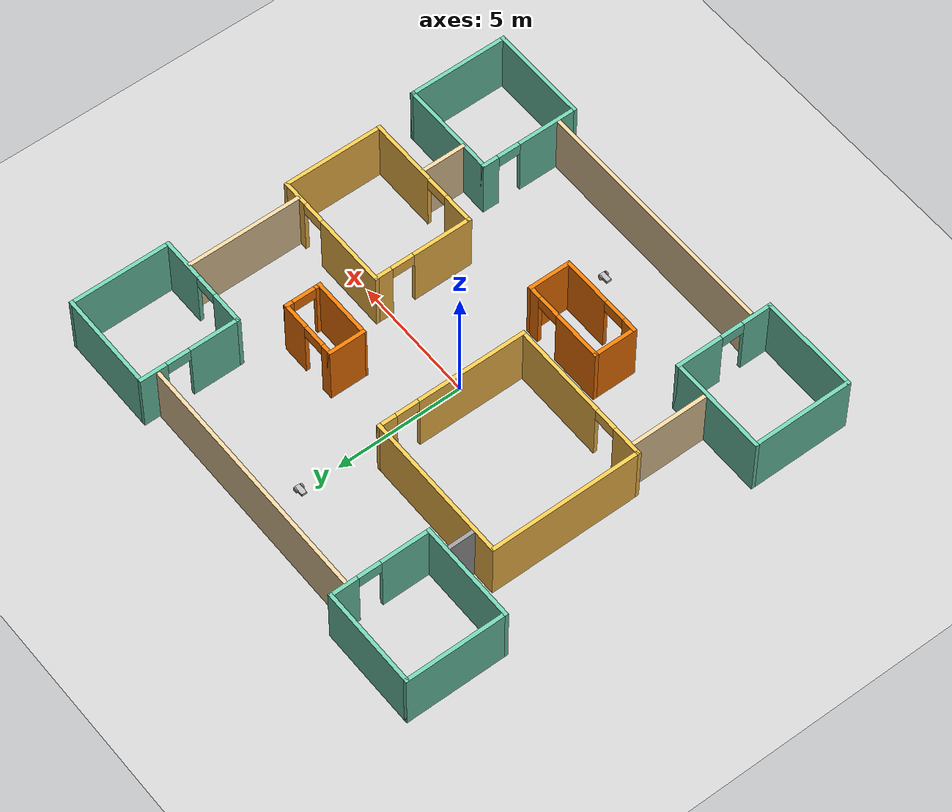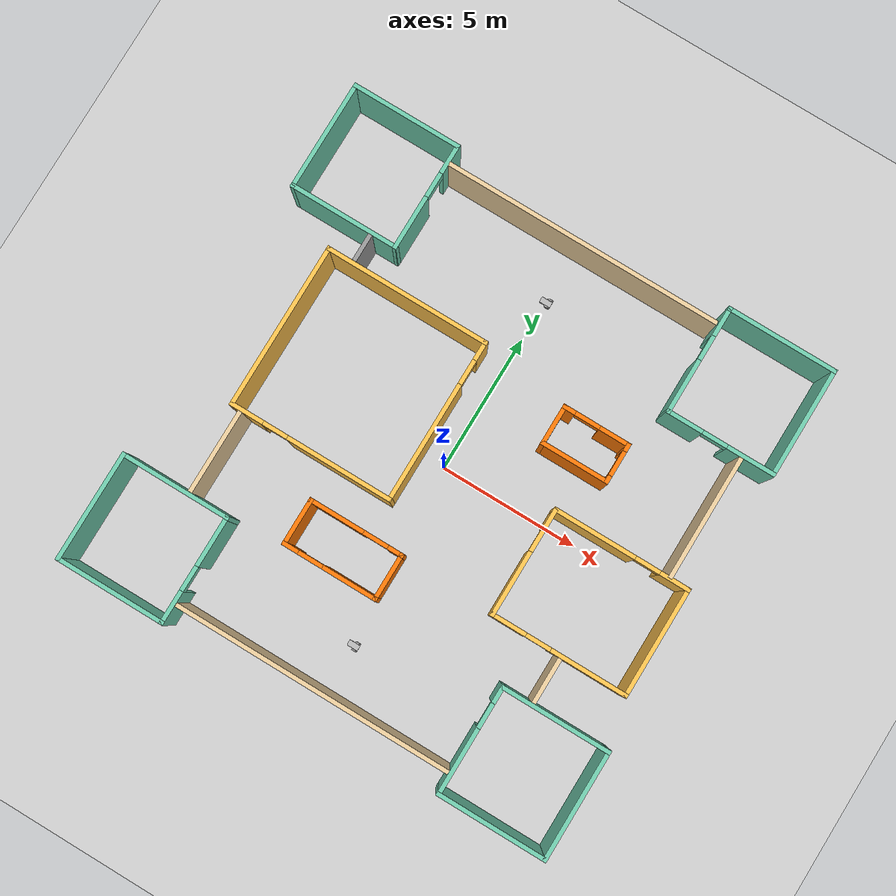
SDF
<sdf version="1.6">
 <world name="default">
  <plugin name="hello" filename="libhello.so"/>
  <light name="sun" type="directional">
   <pose>0 0 10 0 -0 0</pose>
   <diffuse>0.8 0.8 0.8 1</diffuse>
   <specular>0.2 0.2 0.2 1</specular>
   <attenuation>
    <range>1000</range>
    <constant>0.9</constant>
    <linear>0.01</linear>
    <quadratic>0.001</quadratic>
   </attenuation>
   <direction>-0.5 0.1 -0.9</direction>
  </light>
  <model name="ground_plane">
   <static>1</static>
   <link name="link">
    <collision name="collision">
     <geometry><plane><normal>0 0 1</normal><size>100 100</size></plane></geometry>
     <surface><friction><ode><mu>100</mu><mu2>50</mu2></ode></friction></surface>
    </collision>
    <visual name="visual">
     <cast_shadows>0</cast_shadows>
     <geometry><plane><normal>0 0 1</normal><size>100 100</size></plane></geometry>
     <material>
      <script><uri>file://media/materials/scripts/gazebo.material</uri><name>Gazebo/Grey</name></script>
     </material>
    </visual>
   </link>
  </model>
  <gravity>0 0 -9.8</gravity>
  <magnetic_field>6e-06 2.3e-05 -4.2e-05</magnetic_field>
  <atmosphere type="adiabatic"/>
  <physics name="default_physics" default="0" type="ode">
   <max_step_size>0.001</max_step_size>
   <real_time_factor>1</real_time_factor>
   <real_time_update_rate>1000</real_time_update_rate>
  </physics>
  <scene><ambient>0.4 0.4 0.4 1</ambient><background>0.7 0.7 0.7 1</background><shadows>1</shadows></scene>
  <spherical_coordinates>
   <surface_model>EARTH_WGS84</surface_model>
   <latitude_deg>0</latitude_deg>
   <longitude_deg>0</longitude_deg>
   <elevation>0</elevation>
   <heading_deg>0</heading_deg>
  </spherical_coordinates>
  <model name="building">
   <pose>0.17025 -0.01732 0 0 -0 0</pose>
   <link name="Wall_100">
    <collision name="Wall_100_Collision">
     <geometry><box><size>2.5 0.15 2.5</size></box></geometry>
     <pose>0 0 1.25 0 -0 0</pose>
    </collision>
    <visual name="Wall_100_Visual">
     <pose>0 0 1.25 0 -0 0</pose>
     <geometry><box><size>2.5 0.15 2.5</size></box></geometry>
     <material>
      <script><uri>file://media/materials/scripts/gazebo.material</uri><name>Gazebo/Grey</name></script>
      <ambient>0.996078 0.47451 0.0196078 1</ambient>
     </material>
     <meta><layer>0</layer></meta>
    </visual>
    <pose>3.37853 2.13615 0 0 -0 3.14159</pose>
   </link>
   <link name="Wall_101">
    <collision name="Wall_101_Collision">
     <geometry><box><size>1.5 0.15 2.5</size></box></geometry>
     <pose>0 0 1.25 0 -0 0</pose>
    </collision>
    <visual name="Wall_101_Visual">
     <pose>0 0 1.25 0 -0 0</pose>
     <geometry><box><size>1.5 0.15 2.5</size></box></geometry>
     <material>
      <script><uri>file://media/materials/scripts/gazebo.material</uri><name>Gazebo/Grey</name></script>
      <ambient>0.996078 0.47451 0.0196078 1</ambient>
     </material>
     <meta><layer>0</layer></meta>
    </visual>
    <pose>2.20353 2.81115 0 0 -0 1.5708</pose>
   </link>
   <link name="Wall_103">
    <collision name="Wall_103_Collision">
     <geometry><box><size>1.75 0.15 2.5</size></box></geometry>
     <pose>0 0 1.25 0 -0 0</pose>
    </collision>
    <visual name="Wall_103_Visual">
     <pose>0 0 1.25 0 -0 0</pose>
     <geometry><box><size>1.75 0.15 2.5</size></box></geometry>
     <material>
      <script><uri>file://media/materials/scripts/gazebo.material</uri><name>Gazebo/Grey</name></script>
      <ambient>0.996078 0.47451 0.0196078 1</ambient>
     </material>
     <meta><layer>0</layer></meta>
    </visual>
    <pose>-3.11094 -4.01873 0 0 0 -1.5708</pose>
   </link>
   <link name="Wall_104">
    <pose>-1.43594 -4.81873 0 0 -0 0</pose>
    <visual name="Wall_104_Visual_0">
     <pose>-1.45465 0 1.25 0 -0 0</pose>
     <geometry><box><size>0.590693 0.15 2.5</size></box></geometry>
     <material>
      <script><uri>file://media/materials/scripts/gazebo.material</uri><name>Gazebo/Grey</name></script>
      <ambient>0.996078 0.47451 0.0196078 1</ambient>
     </material>
     <meta><layer>0</layer></meta>
    </visual>
    <collision name="Wall_104_Collision_0">
     <geometry><box><size>0.590693 0.15 2.5</size></box></geometry>
     <pose>-1.45465 0 1.25 0 -0 0</pose>
    </collision>
    <visual name="Wall_104_Visual_1">
     <pose>0.745346 0 1.25 0 -0 0</pose>
     <geometry><box><size>2.00931 0.15 2.5</size></box></geometry>
     <material>
      <script><uri>file://media/materials/scripts/gazebo.material</uri><name>Gazebo/Grey</name></script>
      <ambient>0.996078 0.47451 0.0196078 1</ambient>
     </material>
     <meta><layer>0</layer></meta>
    </visual>
    <collision name="Wall_104_Collision_1">
     <geometry><box><size>2.00931 0.15 2.5</size></box></geometry>
     <pose>0.745346 0 1.25 0 -0 0</pose>
    </collision>
    <visual name="Wall_104_Visual_2">
     <pose>-0.709307 0 2.25 0 -0 0</pose>
     <geometry><box><size>0.9 0.15 0.5</size></box></geometry>
     <material>
      <script><uri>file://media/materials/scripts/gazebo.material</uri><name>Gazebo/Grey</name></script>
      <ambient>0.996078 0.47451 0.0196078 1</ambient>
     </material>
     <meta><layer>0</layer></meta>
    </visual>
    <collision name="Wall_104_Collision_2">
     <geometry><box><size>0.9 0.15 0.5</size></box></geometry>
     <pose>-0.709307 0 2.25 0 -0 0</pose>
    </collision>
   </link>
   <link name="Wall_105">
    <collision name="Wall_105_Collision">
     <geometry><box><size>1.75 0.15 2.5</size></box></geometry>
     <pose>0 0 1.25 0 -0 0</pose>
    </collision>
    <visual name="Wall_105_Visual">
     <pose>0 0 1.25 0 -0 0</pose>
     <geometry><box><size>1.75 0.15 2.5</size></box></geometry>
     <material>
      <script><uri>file://media/materials/scripts/gazebo.material</uri><name>Gazebo/Grey</name></script>
      <ambient>0.996078 0.47451 0.0196078 1</ambient>
     </material>
     <meta><layer>0</layer></meta>
    </visual>
    <pose>0.239057 -4.01873 0 0 -0 1.5708</pose>
   </link>
   <link name="Wall_106">
    <pose>-1.43594 -3.21873 0 0 -0 3.14159</pose>
    <visual name="Wall_106_Visual_0">
     <pose>-1.46139 0 1.25 0 -0 0</pose>
     <geometry><box><size>0.577222 0.15 2.5</size></box></geometry>
     <material>
      <script><uri>file://media/materials/scripts/gazebo.material</uri><name>Gazebo/Grey</name></script>
      <ambient>0.996078 0.47451 0.0196078 1</ambient>
     </material>
     <meta><layer>0</layer></meta>
    </visual>
    <collision name="Wall_106_Collision_0">
     <geometry><box><size>0.577222 0.15 2.5</size></box></geometry>
     <pose>-1.46139 0 1.25 0 -0 0</pose>
    </collision>
    <visual name="Wall_106_Visual_1">
     <pose>0.738611 0 1.25 0 -0 0</pose>
     <geometry><box><size>2.02278 0.15 2.5</size></box></geometry>
     <material>
      <script><uri>file://media/materials/scripts/gazebo.material</uri><name>Gazebo/Grey</name></script>
      <ambient>0.996078 0.47451 0.0196078 1</ambient>
     </material>
     <meta><layer>0</layer></meta>
    </visual>
    <collision name="Wall_106_Collision_1">
     <geometry><box><size>2.02278 0.15 2.5</size></box></geometry>
     <pose>0.738611 0 1.25 0 -0 0</pose>
    </collision>
    <visual name="Wall_106_Visual_2">
     <pose>-0.722778 0 2.25 0 -0 0</pose>
     <geometry><box><size>0.9 0.15 0.5</size></box></geometry>
     <material>
      <script><uri>file://media/materials/scripts/gazebo.material</uri><name>Gazebo/Grey</name></script>
      <ambient>0.996078 0.47451 0.0196078 1</ambient>
     </material>
     <meta><layer>0</layer></meta>
    </visual>
    <collision name="Wall_106_Collision_2">
     <geometry><box><size>0.9 0.15 0.5</size></box></geometry>
     <pose>-0.722778 0 2.25 0 -0 0</pose>
    </collision>
   </link>
   <link name="Wall_108">
    <collision name="Wall_108_Collision">
     <geometry><box><size>3 0.15 2.5</size></box></geometry>
     <pose>0 0 1.25 0 -0 0</pose>
    </collision>
    <visual name="Wall_108_Visual">
     <pose>0 0 1.25 0 -0 0</pose>
     <geometry><box><size>3 0.15 2.5</size></box></geometry>
     <material>
      <script><uri>file://media/materials/scripts/gazebo.material</uri><name>Gazebo/Grey</name></script>
      <ambient>0.921569 0.807843 0.615686 1</ambient>
     </material>
     <meta><layer>0</layer></meta>
    </visual>
    <pose>-6.50973 -3.48506 0 0 0 -1.5708</pose>
   </link>
   <link name="Wall_114">
    <collision name="Wall_114_Collision">
     <geometry><box><size>4.5 0.15 2.5</size></box></geometry>
     <pose>0 0 1.25 0 -0 0</pose>
    </collision>
    <visual name="Wall_114_Visual">
     <pose>0 0 1.25 0 -0 0</pose>
     <geometry><box><size>4.5 0.15 2.5</size></box></geometry>
     <material>
      <script><uri>file://media/materials/scripts/gazebo.material</uri><name>Gazebo/Grey</name></script>
      <ambient>0.921569 0.807843 0.615686 1</ambient>
     </material>
     <meta><layer>0</layer></meta>
    </visual>
    <pose>7.81153 2.79707 0 0 0 -1.5708</pose>
   </link>
   <link name="Wall_116">
    <collision name="Wall_116_Collision">
     <geometry><box><size>10 0.15 2.5</size></box></geometry>
     <pose>0 0 1.25 0 -0 0</pose>
    </collision>
    <visual name="Wall_116_Visual">
     <pose>0 0 1.25 0 -0 0</pose>
     <geometry><box><size>10 0.15 2.5</size></box></geometry>
     <material>
      <script><uri>file://media/materials/scripts/gazebo.material</uri><name>Gazebo/Grey</name></script>
      <ambient>0.921569 0.807843 0.615686 1</ambient>
     </material>
     <meta><layer>0</layer></meta>
    </visual>
    <pose>0.006519 -8.20878 0 0 -0 0</pose>
   </link>
   <link name="Wall_118">
    <collision name="Wall_118_Collision">
     <geometry><box><size>1.75 0.15 2.5</size></box></geometry>
     <pose>0 0 1.25 0 -0 0</pose>
    </collision>
    <visual name="Wall_118_Visual">
     <pose>0 0 1.25 0 -0 0</pose>
     <geometry><box><size>1.75 0.15 2.5</size></box></geometry>
     <material>
      <script><uri>file://media/materials/scripts/gazebo.material</uri><name>Gazebo/Grey</name></script>
      <ambient>0.921569 0.807843 0.615686 1</ambient>
     </material>
     <meta><layer>0</layer></meta>
    </visual>
    <pose>6.15848 -4.23502 0 0 0 -1.5708</pose>
   </link>
   <link name="Wall_121">
    <collision name="Wall_121_Collision">
     <geometry><box><size>1 0.15 2.5</size></box></geometry>
     <pose>0 0 1.25 0 -0 0</pose>
    </collision>
    <visual name="Wall_121_Visual">
     <pose>0 0 1.25 0 -0 0</pose>
     <geometry><box><size>1 0.15 2.5</size></box></geometry>
     <material>
      <script><uri>file://media/materials/scripts/gazebo.material</uri><name>Gazebo/Grey</name></script>
      <ambient>1 1 1 1</ambient>
     </material>
     <meta><layer>0</layer></meta>
    </visual>
    <pose>-5.96902 4.51336 0 0 0 -1.5708</pose>
   </link>
   <link name="Wall_124">
    <collision name="Wall_124_Collision">
     <geometry><box><size>10 0.15 2.5</size></box></geometry>
     <pose>0 0 1.25 0 -0 0</pose>
    </collision>
    <visual name="Wall_124_Visual">
     <pose>0 0 1.25 0 -0 0</pose>
     <geometry><box><size>10 0.15 2.5</size></box></geometry>
     <material>
      <script><uri>file://media/materials/scripts/gazebo.material</uri><name>Gazebo/Grey</name></script>
      <ambient>0.921569 0.807843 0.615686 1</ambient>
     </material>
     <meta><layer>0</layer></meta>
    </visual>
    <pose>-0.024379 8.30625 0 0 -0 0</pose>
   </link>
   <link name="Wall_58">
    <collision name="Wall_58_Collision">
     <geometry><box><size>4 0.15 2.5</size></box></geometry>
     <pose>0 0 1.25 0 -0 0</pose>
    </collision>
    <visual name="Wall_58_Visual">
     <pose>0 0 1.25 0 -0 0</pose>
     <geometry><box><size>4 0.15 2.5</size></box></geometry>
     <material>
      <script><uri>file://media/materials/scripts/gazebo.material</uri><name>Gazebo/Grey</name></script>
      <ambient>0.435294 0.796078 0.67451 1</ambient>
     </material>
     <meta><layer>0</layer></meta>
    </visual>
    <pose>-7.00929 8.93364 0 0 -0 0</pose>
   </link>
   <link name="Wall_59">
    <pose>-5.08429 7.00864 0 0 0 -1.5708</pose>
    <visual name="Wall_59_Visual_0">
     <pose>-1.4441 0 1.25 0 -0 0</pose>
     <geometry><box><size>1.11179 0.15 2.5</size></box></geometry>
     <material>
      <script><uri>file://media/materials/scripts/gazebo.material</uri><name>Gazebo/Grey</name></script>
      <ambient>0.435294 0.796078 0.67451 1</ambient>
     </material>
     <meta><layer>0</layer></meta>
    </visual>
    <collision name="Wall_59_Collision_0">
     <geometry><box><size>1.11179 0.15 2.5</size></box></geometry>
     <pose>-1.4441 0 1.25 0 -0 0</pose>
    </collision>
    <visual name="Wall_59_Visual_1">
     <pose>1.0059 0 1.25 0 -0 0</pose>
     <geometry><box><size>1.98821 0.15 2.5</size></box></geometry>
     <material>
      <script><uri>file://media/materials/scripts/gazebo.material</uri><name>Gazebo/Grey</name></script>
      <ambient>0.435294 0.796078 0.67451 1</ambient>
     </material>
     <meta><layer>0</layer></meta>
    </visual>
    <collision name="Wall_59_Collision_1">
     <geometry><box><size>1.98821 0.15 2.5</size></box></geometry>
     <pose>1.0059 0 1.25 0 -0 0</pose>
    </collision>
    <visual name="Wall_59_Visual_2">
     <pose>-0.438207 0 2.25 0 -0 0</pose>
     <geometry><box><size>0.9 0.15 0.5</size></box></geometry>
     <material>
      <script><uri>file://media/materials/scripts/gazebo.material</uri><name>Gazebo/Grey</name></script>
      <ambient>0.435294 0.796078 0.67451 1</ambient>
     </material>
     <meta><layer>0</layer></meta>
    </visual>
    <collision name="Wall_59_Collision_2">
     <geometry><box><size>0.9 0.15 0.5</size></box></geometry>
     <pose>-0.438207 0 2.25 0 -0 0</pose>
    </collision>
   </link>
   <link name="Wall_60">
    <collision name="Wall_60_Collision">
     <geometry><box><size>4 0.15 2.5</size></box></geometry>
     <pose>0 0 1.25 0 -0 0</pose>
    </collision>
    <visual name="Wall_60_Visual">
     <pose>0 0 1.25 0 -0 0</pose>
     <geometry><box><size>4 0.15 2.5</size></box></geometry>
     <material>
      <script><uri>file://media/materials/scripts/gazebo.material</uri><name>Gazebo/Grey</name></script>
      <ambient>0.435294 0.796078 0.67451 1</ambient>
     </material>
     <meta><layer>0</layer></meta>
    </visual>
    <pose>-7.00929 5.08364 0 0 -0 3.14159</pose>
   </link>
   <link name="Wall_61">
    <collision name="Wall_61_Collision">
     <geometry><box><size>4 0.15 2.5</size></box></geometry>
     <pose>0 0 1.25 0 -0 0</pose>
    </collision>
    <visual name="Wall_61_Visual">
     <pose>0 0 1.25 0 -0 0</pose>
     <geometry><box><size>4 0.15 2.5</size></box></geometry>
     <material>
      <script><uri>file://media/materials/scripts/gazebo.material</uri><name>Gazebo/Grey</name></script>
      <ambient>0.435294 0.796078 0.67451 1</ambient>
     </material>
     <meta><layer>0</layer></meta>
    </visual>
    <pose>-8.93429 7.00864 0 0 -0 1.5708</pose>
   </link>
   <link name="Wall_63">
    <collision name="Wall_63_Collision">
     <geometry><box><size>4 0.15 2.5</size></box></geometry>
     <pose>0 0 1.25 0 -0 0</pose>
    </collision>
    <visual name="Wall_63_Visual">
     <pose>0 0 1.25 0 -0 0</pose>
     <geometry><box><size>4 0.15 2.5</size></box></geometry>
     <material>
      <script><uri>file://media/materials/scripts/gazebo.material</uri><name>Gazebo/Grey</name></script>
      <ambient>0.435294 0.796078 0.67451 1</ambient>
     </material>
     <meta><layer>0</layer></meta>
    </visual>
    <pose>8.93429 6.99136 0 0 0 -1.5708</pose>
   </link>
   <link name="Wall_64">
    <pose>7.00929 5.06635 0 0 -0 3.14159</pose>
    <visual name="Wall_64_Visual_0">
     <pose>-1.11962 0 1.25 0 -0 0</pose>
     <geometry><box><size>1.76077 0.15 2.5</size></box></geometry>
     <material>
      <script><uri>file://media/materials/scripts/gazebo.material</uri><name>Gazebo/Grey</name></script>
      <ambient>0.435294 0.796078 0.67451 1</ambient>
     </material>
     <meta><layer>0</layer></meta>
    </visual>
    <collision name="Wall_64_Collision_0">
     <geometry><box><size>1.76077 0.15 2.5</size></box></geometry>
     <pose>-1.11962 0 1.25 0 -0 0</pose>
    </collision>
    <visual name="Wall_64_Visual_1">
     <pose>1.33038 0 1.25 0 -0 0</pose>
     <geometry><box><size>1.33923 0.15 2.5</size></box></geometry>
     <material>
      <script><uri>file://media/materials/scripts/gazebo.material</uri><name>Gazebo/Grey</name></script>
      <ambient>0.435294 0.796078 0.67451 1</ambient>
     </material>
     <meta><layer>0</layer></meta>
    </visual>
    <collision name="Wall_64_Collision_1">
     <geometry><box><size>1.33923 0.15 2.5</size></box></geometry>
     <pose>1.33038 0 1.25 0 -0 0</pose>
    </collision>
    <visual name="Wall_64_Visual_2">
     <pose>0.210767 0 2.25 0 -0 0</pose>
     <geometry><box><size>0.9 0.15 0.5</size></box></geometry>
     <material>
      <script><uri>file://media/materials/scripts/gazebo.material</uri><name>Gazebo/Grey</name></script>
      <ambient>0.435294 0.796078 0.67451 1</ambient>
     </material>
     <meta><layer>0</layer></meta>
    </visual>
    <collision name="Wall_64_Collision_2">
     <geometry><box><size>0.9 0.15 0.5</size></box></geometry>
     <pose>0.210767 0 2.25 0 -0 0</pose>
    </collision>
   </link>
   <link name="Wall_65">
    <pose>5.08429 6.99136 0 0 -0 1.5708</pose>
    <visual name="Wall_65_Visual_0">
     <pose>-0.997252 0 1.25 0 -0 0</pose>
     <geometry><box><size>2.0055 0.15 2.5</size></box></geometry>
     <material>
      <script><uri>file://media/materials/scripts/gazebo.material</uri><name>Gazebo/Grey</name></script>
      <ambient>0.435294 0.796078 0.67451 1</ambient>
     </material>
     <meta><layer>0</layer></meta>
    </visual>
    <collision name="Wall_65_Collision_0">
     <geometry><box><size>2.0055 0.15 2.5</size></box></geometry>
     <pose>-0.997252 0 1.25 0 -0 0</pose>
    </collision>
    <visual name="Wall_65_Visual_1">
     <pose>1.45275 0 1.25 0 -0 0</pose>
     <geometry><box><size>1.0945 0.15 2.5</size></box></geometry>
     <material>
      <script><uri>file://media/materials/scripts/gazebo.material</uri><name>Gazebo/Grey</name></script>
      <ambient>0.435294 0.796078 0.67451 1</ambient>
     </material>
     <meta><layer>0</layer></meta>
    </visual>
    <collision name="Wall_65_Collision_1">
     <geometry><box><size>1.0945 0.15 2.5</size></box></geometry>
     <pose>1.45275 0 1.25 0 -0 0</pose>
    </collision>
    <visual name="Wall_65_Visual_2">
     <pose>0.455496 0 2.25 0 -0 0</pose>
     <geometry><box><size>0.9 0.15 0.5</size></box></geometry>
     <material>
      <script><uri>file://media/materials/scripts/gazebo.material</uri><name>Gazebo/Grey</name></script>
      <ambient>0.435294 0.796078 0.67451 1</ambient>
     </material>
     <meta><layer>0</layer></meta>
    </visual>
    <collision name="Wall_65_Collision_2">
     <geometry><box><size>0.9 0.15 0.5</size></box></geometry>
     <pose>0.455496 0 2.25 0 -0 0</pose>
    </collision>
   </link>
   <link name="Wall_66">
    <collision name="Wall_66_Collision">
     <geometry><box><size>4 0.15 2.5</size></box></geometry>
     <pose>0 0 1.25 0 -0 0</pose>
    </collision>
    <visual name="Wall_66_Visual">
     <pose>0 0 1.25 0 -0 0</pose>
     <geometry><box><size>4 0.15 2.5</size></box></geometry>
     <material>
      <script><uri>file://media/materials/scripts/gazebo.material</uri><name>Gazebo/Grey</name></script>
      <ambient>0.435294 0.796078 0.67451 1</ambient>
     </material>
     <meta><layer>0</layer></meta>
    </visual>
    <pose>7.00929 8.91635 0 0 -0 0</pose>
   </link>
   <link name="Wall_71">
    <collision name="Wall_71_Collision">
     <geometry><box><size>4 0.15 2.5</size></box></geometry>
     <pose>0 0 1.25 0 -0 0</pose>
    </collision>
    <visual name="Wall_71_Visual">
     <pose>0 0 1.25 0 -0 0</pose>
     <geometry><box><size>4 0.15 2.5</size></box></geometry>
     <material>
      <script><uri>file://media/materials/scripts/gazebo.material</uri><name>Gazebo/Grey</name></script>
      <ambient>0.435294 0.796078 0.67451 1</ambient>
     </material>
     <meta><layer>0</layer></meta>
    </visual>
    <pose>7.00929 -8.93364 0 0 -0 3.14159</pose>
   </link>
   <link name="Wall_72">
    <pose>5.08429 -7.00864 0 0 -0 1.5708</pose>
    <visual name="Wall_72_Visual_0">
     <pose>-0.779391 0 1.25 0 -0 0</pose>
     <geometry><box><size>2.44122 0.15 2.5</size></box></geometry>
     <material>
      <script><uri>file://media/materials/scripts/gazebo.material</uri><name>Gazebo/Grey</name></script>
      <ambient>0.435294 0.796078 0.67451 1</ambient>
     </material>
     <meta><layer>0</layer></meta>
    </visual>
    <collision name="Wall_72_Collision_0">
     <geometry><box><size>2.44122 0.15 2.5</size></box></geometry>
     <pose>-0.779391 0 1.25 0 -0 0</pose>
    </collision>
    <visual name="Wall_72_Visual_1">
     <pose>1.67061 0 1.25 0 -0 0</pose>
     <geometry><box><size>0.658782 0.15 2.5</size></box></geometry>
     <material>
      <script><uri>file://media/materials/scripts/gazebo.material</uri><name>Gazebo/Grey</name></script>
      <ambient>0.435294 0.796078 0.67451 1</ambient>
     </material>
     <meta><layer>0</layer></meta>
    </visual>
    <collision name="Wall_72_Collision_1">
     <geometry><box><size>0.658782 0.15 2.5</size></box></geometry>
     <pose>1.67061 0 1.25 0 -0 0</pose>
    </collision>
    <visual name="Wall_72_Visual_2">
     <pose>0.891218 0 2.25 0 -0 0</pose>
     <geometry><box><size>0.9 0.15 0.5</size></box></geometry>
     <material>
      <script><uri>file://media/materials/scripts/gazebo.material</uri><name>Gazebo/Grey</name></script>
      <ambient>0.435294 0.796078 0.67451 1</ambient>
     </material>
     <meta><layer>0</layer></meta>
    </visual>
    <collision name="Wall_72_Collision_2">
     <geometry><box><size>0.9 0.15 0.5</size></box></geometry>
     <pose>0.891218 0 2.25 0 -0 0</pose>
    </collision>
   </link>
   <link name="Wall_73">
    <collision name="Wall_73_Collision">
     <geometry><box><size>4 0.15 2.5</size></box></geometry>
     <pose>0 0 1.25 0 -0 0</pose>
    </collision>
    <visual name="Wall_73_Visual">
     <pose>0 0 1.25 0 -0 0</pose>
     <geometry><box><size>4 0.15 2.5</size></box></geometry>
     <material>
      <script><uri>file://media/materials/scripts/gazebo.material</uri><name>Gazebo/Grey</name></script>
      <ambient>0.435294 0.796078 0.67451 1</ambient>
     </material>
     <meta><layer>0</layer></meta>
    </visual>
    <pose>7.00929 -5.08364 0 0 -0 0</pose>
   </link>
   <link name="Wall_74">
    <collision name="Wall_74_Collision">
     <geometry><box><size>4 0.15 2.5</size></box></geometry>
     <pose>0 0 1.25 0 -0 0</pose>
    </collision>
    <visual name="Wall_74_Visual">
     <pose>0 0 1.25 0 -0 0</pose>
     <geometry><box><size>4 0.15 2.5</size></box></geometry>
     <material>
      <script><uri>file://media/materials/scripts/gazebo.material</uri><name>Gazebo/Grey</name></script>
      <ambient>0.435294 0.796078 0.67451 1</ambient>
     </material>
     <meta><layer>0</layer></meta>
    </visual>
    <pose>8.93429 -7.00864 0 0 0 -1.5708</pose>
   </link>
   <link name="Wall_76">
    <collision name="Wall_76_Collision">
     <geometry><box><size>4 0.15 2.5</size></box></geometry>
     <pose>0 0 1.25 0 -0 0</pose>
    </collision>
    <visual name="Wall_76_Visual">
     <pose>0 0 1.25 0 -0 0</pose>
     <geometry><box><size>4 0.15 2.5</size></box></geometry>
     <material>
      <script><uri>file://media/materials/scripts/gazebo.material</uri><name>Gazebo/Grey</name></script>
      <ambient>0.435294 0.796078 0.67451 1</ambient>
     </material>
     <meta><layer>0</layer></meta>
    </visual>
    <pose>-7.00929 -8.91636 0 0 -0 0</pose>
   </link>
   <link name="Wall_77">
    <pose>-5.08429 -6.99136 0 0 -0 1.5708</pose>
    <visual name="Wall_77_Visual_0">
     <pose>-1.38249 0 1.25 0 -0 0</pose>
     <geometry><box><size>1.23503 0.15 2.5</size></box></geometry>
     <material>
      <script><uri>file://media/materials/scripts/gazebo.material</uri><name>Gazebo/Grey</name></script>
      <ambient>0.435294 0.796078 0.67451 1</ambient>
     </material>
     <meta><layer>0</layer></meta>
    </visual>
    <collision name="Wall_77_Collision_0">
     <geometry><box><size>1.23503 0.15 2.5</size></box></geometry>
     <pose>-1.38249 0 1.25 0 -0 0</pose>
    </collision>
    <visual name="Wall_77_Visual_1">
     <pose>1.06751 0 1.25 0 -0 0</pose>
     <geometry><box><size>1.86497 0.15 2.5</size></box></geometry>
     <material>
      <script><uri>file://media/materials/scripts/gazebo.material</uri><name>Gazebo/Grey</name></script>
      <ambient>0.435294 0.796078 0.67451 1</ambient>
     </material>
     <meta><layer>0</layer></meta>
    </visual>
    <collision name="Wall_77_Collision_1">
     <geometry><box><size>1.86497 0.15 2.5</size></box></geometry>
     <pose>1.06751 0 1.25 0 -0 0</pose>
    </collision>
    <visual name="Wall_77_Visual_2">
     <pose>-0.314972 0 2.25 0 -0 0</pose>
     <geometry><box><size>0.9 0.15 0.5</size></box></geometry>
     <material>
      <script><uri>file://media/materials/scripts/gazebo.material</uri><name>Gazebo/Grey</name></script>
      <ambient>0.435294 0.796078 0.67451 1</ambient>
     </material>
     <meta><layer>0</layer></meta>
    </visual>
    <collision name="Wall_77_Collision_2">
     <geometry><box><size>0.9 0.15 0.5</size></box></geometry>
     <pose>-0.314972 0 2.25 0 -0 0</pose>
    </collision>
   </link>
   <link name="Wall_78">
    <collision name="Wall_78_Collision">
     <geometry><box><size>4 0.15 2.5</size></box></geometry>
     <pose>0 0 1.25 0 -0 0</pose>
    </collision>
    <visual name="Wall_78_Visual">
     <pose>0 0 1.25 0 -0 0</pose>
     <geometry><box><size>4 0.15 2.5</size></box></geometry>
     <material>
      <script><uri>file://media/materials/scripts/gazebo.material</uri><name>Gazebo/Grey</name></script>
      <ambient>0.435294 0.796078 0.67451 1</ambient>
     </material>
     <meta><layer>0</layer></meta>
    </visual>
    <pose>-7.00929 -5.06636 0 0 -0 3.14159</pose>
   </link>
   <link name="Wall_79">
    <collision name="Wall_79_Collision">
     <geometry><box><size>4 0.15 2.5</size></box></geometry>
     <pose>0 0 1.25 0 -0 0</pose>
    </collision>
    <visual name="Wall_79_Visual">
     <pose>0 0 1.25 0 -0 0</pose>
     <geometry><box><size>4 0.15 2.5</size></box></geometry>
     <material>
      <script><uri>file://media/materials/scripts/gazebo.material</uri><name>Gazebo/Grey</name></script>
      <ambient>0.435294 0.796078 0.67451 1</ambient>
     </material>
     <meta><layer>0</layer></meta>
    </visual>
    <pose>-8.93429 -6.99136 0 0 0 -1.5708</pose>
   </link>
   <link name="Wall_84">
    <collision name="Wall_84_Collision">
     <geometry><box><size>6 0.15 2.5</size></box></geometry>
     <pose>0 0 1.25 0 -0 0</pose>
    </collision>
    <visual name="Wall_84_Visual">
     <pose>0 0 1.25 0 -0 0</pose>
     <geometry><box><size>6 0.15 2.5</size></box></geometry>
     <material>
      <script><uri>file://media/materials/scripts/gazebo.material</uri><name>Gazebo/Grey</name></script>
      <ambient>1 0.764706 0.305882 1</ambient>
     </material>
     <meta><layer>0</layer></meta>
    </visual>
    <pose>-3.94006 3.93417 0 0 -0 0</pose>
   </link>
   <link name="Wall_85">
    <pose>-1.01506 1.00917 0 0 0 -1.5708</pose>
    <visual name="Wall_85_Visual_0">
     <pose>-2.63359 0 1.25 0 -0 0</pose>
     <geometry><box><size>0.732823 0.15 2.5</size></box></geometry>
     <material>
      <script><uri>file://media/materials/scripts/gazebo.material</uri><name>Gazebo/Grey</name></script>
      <ambient>1 0.764706 0.305882 1</ambient>
     </material>
     <meta><layer>0</layer></meta>
    </visual>
    <collision name="Wall_85_Collision_0">
     <geometry><box><size>0.732823 0.15 2.5</size></box></geometry>
     <pose>-2.63359 0 1.25 0 -0 0</pose>
    </collision>
    <visual name="Wall_85_Visual_1">
     <pose>0.816412 0 1.25 0 -0 0</pose>
     <geometry><box><size>4.36718 0.15 2.5</size></box></geometry>
     <material>
      <script><uri>file://media/materials/scripts/gazebo.material</uri><name>Gazebo/Grey</name></script>
      <ambient>1 0.764706 0.305882 1</ambient>
     </material>
     <meta><layer>0</layer></meta>
    </visual>
    <collision name="Wall_85_Collision_1">
     <geometry><box><size>4.36718 0.15 2.5</size></box></geometry>
     <pose>0.816412 0 1.25 0 -0 0</pose>
    </collision>
    <visual name="Wall_85_Visual_2">
     <pose>-1.81718 0 2.25 0 -0 0</pose>
     <geometry><box><size>0.9 0.15 0.5</size></box></geometry>
     <material>
      <script><uri>file://media/materials/scripts/gazebo.material</uri><name>Gazebo/Grey</name></script>
      <ambient>1 0.764706 0.305882 1</ambient>
     </material>
     <meta><layer>0</layer></meta>
    </visual>
    <collision name="Wall_85_Collision_2">
     <geometry><box><size>0.9 0.15 0.5</size></box></geometry>
     <pose>-1.81718 0 2.25 0 -0 0</pose>
    </collision>
   </link>
   <link name="Wall_86">
    <pose>-3.94006 -1.91583 0 0 -0 3.14159</pose>
    <visual name="Wall_86_Visual_0">
     <pose>-1.06873 0 1.25 0 -0 0</pose>
     <geometry><box><size>3.86254 0.15 2.5</size></box></geometry>
     <material>
      <script><uri>file://media/materials/scripts/gazebo.material</uri><name>Gazebo/Grey</name></script>
      <ambient>1 0.764706 0.305882 1</ambient>
     </material>
     <meta><layer>0</layer></meta>
    </visual>
    <collision name="Wall_86_Collision_0">
     <geometry><box><size>3.86254 0.15 2.5</size></box></geometry>
     <pose>-1.06873 0 1.25 0 -0 0</pose>
    </collision>
    <visual name="Wall_86_Visual_1">
     <pose>2.38127 0 1.25 0 -0 0</pose>
     <geometry><box><size>1.23746 0.15 2.5</size></box></geometry>
     <material>
      <script><uri>file://media/materials/scripts/gazebo.material</uri><name>Gazebo/Grey</name></script>
      <ambient>1 0.764706 0.305882 1</ambient>
     </material>
     <meta><layer>0</layer></meta>
    </visual>
    <collision name="Wall_86_Collision_1">
     <geometry><box><size>1.23746 0.15 2.5</size></box></geometry>
     <pose>2.38127 0 1.25 0 -0 0</pose>
    </collision>
    <visual name="Wall_86_Visual_2">
     <pose>1.31254 0 2.25 0 -0 0</pose>
     <geometry><box><size>0.9 0.15 0.5</size></box></geometry>
     <material>
      <script><uri>file://media/materials/scripts/gazebo.material</uri><name>Gazebo/Grey</name></script>
      <ambient>1 0.764706 0.305882 1</ambient>
     </material>
     <meta><layer>0</layer></meta>
    </visual>
    <collision name="Wall_86_Collision_2">
     <geometry><box><size>0.9 0.15 0.5</size></box></geometry>
     <pose>1.31254 0 2.25 0 -0 0</pose>
    </collision>
   </link>
   <link name="Wall_87">
    <collision name="Wall_87_Collision">
     <geometry><box><size>6 0.15 2.5</size></box></geometry>
     <pose>0 0 1.25 0 -0 0</pose>
    </collision>
    <visual name="Wall_87_Visual">
     <pose>0 0 1.25 0 -0 0</pose>
     <geometry><box><size>6 0.15 2.5</size></box></geometry>
     <material>
      <script><uri>file://media/materials/scripts/gazebo.material</uri><name>Gazebo/Grey</name></script>
      <ambient>1 0.764706 0.305882 1</ambient>
     </material>
     <meta><layer>0</layer></meta>
    </visual>
    <pose>-6.86506 1.00917 0 0 -0 1.5708</pose>
   </link>
   <link name="Wall_89">
    <collision name="Wall_89_Collision">
     <geometry><box><size>4 0.15 2.5</size></box></geometry>
     <pose>0 0 1.25 0 -0 0</pose>
    </collision>
    <visual name="Wall_89_Visual">
     <pose>0 0 1.25 0 -0 0</pose>
     <geometry><box><size>4 0.15 2.5</size></box></geometry>
     <material>
      <script><uri>file://media/materials/scripts/gazebo.material</uri><name>Gazebo/Grey</name></script>
      <ambient>1 0.764706 0.305882 1</ambient>
     </material>
     <meta><layer>0</layer></meta>
    </visual>
    <pose>8.49129 -1.38643 0 0 -0 1.5708</pose>
   </link>
   <link name="Wall_90">
    <pose>6.06629 0.538572 0 0 -0 3.14159</pose>
    <visual name="Wall_90_Visual_0">
     <pose>-1.9492 0 1.25 0 -0 0</pose>
     <geometry><box><size>1.1016 0.15 2.5</size></box></geometry>
     <material>
      <script><uri>file://media/materials/scripts/gazebo.material</uri><name>Gazebo/Grey</name></script>
      <ambient>1 0.764706 0.305882 1</ambient>
     </material>
     <meta><layer>0</layer></meta>
    </visual>
    <collision name="Wall_90_Collision_0">
     <geometry><box><size>1.1016 0.15 2.5</size></box></geometry>
     <pose>-1.9492 0 1.25 0 -0 0</pose>
    </collision>
    <visual name="Wall_90_Visual_1">
     <pose>1.0008 0 1.25 0 -0 0</pose>
     <geometry><box><size>2.9984 0.15 2.5</size></box></geometry>
     <material>
      <script><uri>file://media/materials/scripts/gazebo.material</uri><name>Gazebo/Grey</name></script>
      <ambient>1 0.764706 0.305882 1</ambient>
     </material>
     <meta><layer>0</layer></meta>
    </visual>
    <collision name="Wall_90_Collision_1">
     <geometry><box><size>2.9984 0.15 2.5</size></box></geometry>
     <pose>1.0008 0 1.25 0 -0 0</pose>
    </collision>
    <visual name="Wall_90_Visual_2">
     <pose>-0.948401 0 2.25 0 -0 0</pose>
     <geometry><box><size>0.9 0.15 0.5</size></box></geometry>
     <material>
      <script><uri>file://media/materials/scripts/gazebo.material</uri><name>Gazebo/Grey</name></script>
      <ambient>1 0.764706 0.305882 1</ambient>
     </material>
     <meta><layer>0</layer></meta>
    </visual>
    <collision name="Wall_90_Collision_2">
     <geometry><box><size>0.9 0.15 0.5</size></box></geometry>
     <pose>-0.948401 0 2.25 0 -0 0</pose>
    </collision>
   </link>
   <link name="Wall_91">
    <pose>3.64129 -1.38643 0 0 0 -1.5708</pose>
    <visual name="Wall_91_Visual_0">
     <pose>-1.64261 0 1.25 0 -0 0</pose>
     <geometry><box><size>0.714781 0.15 2.5</size></box></geometry>
     <material>
      <script><uri>file://media/materials/scripts/gazebo.material</uri><name>Gazebo/Grey</name></script>
      <ambient>1 0.764706 0.305882 1</ambient>
     </material>
     <meta><layer>0</layer></meta>
    </visual>
    <collision name="Wall_91_Collision_0">
     <geometry><box><size>0.714781 0.15 2.5</size></box></geometry>
     <pose>-1.64261 0 1.25 0 -0 0</pose>
    </collision>
    <visual name="Wall_91_Visual_1">
     <pose>0.80739 0 1.25 0 -0 0</pose>
     <geometry><box><size>2.38522 0.15 2.5</size></box></geometry>
     <material>
      <script><uri>file://media/materials/scripts/gazebo.material</uri><name>Gazebo/Grey</name></script>
      <ambient>1 0.764706 0.305882 1</ambient>
     </material>
     <meta><layer>0</layer></meta>
    </visual>
    <collision name="Wall_91_Collision_1">
     <geometry><box><size>2.38522 0.15 2.5</size></box></geometry>
     <pose>0.80739 0 1.25 0 -0 0</pose>
    </collision>
    <visual name="Wall_91_Visual_2">
     <pose>-0.835219 0 2.25 0 -0 0</pose>
     <geometry><box><size>0.9 0.15 0.5</size></box></geometry>
     <material>
      <script><uri>file://media/materials/scripts/gazebo.material</uri><name>Gazebo/Grey</name></script>
      <ambient>1 0.764706 0.305882 1</ambient>
     </material>
     <meta><layer>0</layer></meta>
    </visual>
    <collision name="Wall_91_Collision_2">
     <geometry><box><size>0.9 0.15 0.5</size></box></geometry>
     <pose>-0.835219 0 2.25 0 -0 0</pose>
    </collision>
   </link>
   <link name="Wall_92">
    <pose>6.06629 -3.31143 0 0 -0 0</pose>
    <visual name="Wall_92_Visual_0">
     <pose>-1.85194 0 1.25 0 -0 0</pose>
     <geometry><box><size>1.29611 0.15 2.5</size></box></geometry>
     <material>
      <script><uri>file://media/materials/scripts/gazebo.material</uri><name>Gazebo/Grey</name></script>
      <ambient>1 0.764706 0.305882 1</ambient>
     </material>
     <meta><layer>0</layer></meta>
    </visual>
    <collision name="Wall_92_Collision_0">
     <geometry><box><size>1.29611 0.15 2.5</size></box></geometry>
     <pose>-1.85194 0 1.25 0 -0 0</pose>
    </collision>
    <visual name="Wall_92_Visual_1">
     <pose>1.09806 0 1.25 0 -0 0</pose>
     <geometry><box><size>2.80389 0.15 2.5</size></box></geometry>
     <material>
      <script><uri>file://media/materials/scripts/gazebo.material</uri><name>Gazebo/Grey</name></script>
      <ambient>1 0.764706 0.305882 1</ambient>
     </material>
     <meta><layer>0</layer></meta>
    </visual>
    <collision name="Wall_92_Collision_1">
     <geometry><box><size>2.80389 0.15 2.5</size></box></geometry>
     <pose>1.09806 0 1.25 0 -0 0</pose>
    </collision>
    <visual name="Wall_92_Visual_2">
     <pose>-0.753889 0 2.25 0 -0 0</pose>
     <geometry><box><size>0.9 0.15 0.5</size></box></geometry>
     <material>
      <script><uri>file://media/materials/scripts/gazebo.material</uri><name>Gazebo/Grey</name></script>
      <ambient>1 0.764706 0.305882 1</ambient>
     </material>
     <meta><layer>0</layer></meta>
    </visual>
    <collision name="Wall_92_Collision_2">
     <geometry><box><size>0.9 0.15 0.5</size></box></geometry>
     <pose>-0.753889 0 2.25 0 -0 0</pose>
    </collision>
   </link>
   <link name="Wall_98">
    <pose>3.37853 3.48615 0 0 -0 0</pose>
    <visual name="Wall_98_Visual_0">
     <pose>-1.01792 0 1.25 0 -0 0</pose>
     <geometry><box><size>0.464152 0.15 2.5</size></box></geometry>
     <material>
      <script><uri>file://media/materials/scripts/gazebo.material</uri><name>Gazebo/Grey</name></script>
      <ambient>0.996078 0.47451 0.0196078 1</ambient>
     </material>
     <meta><layer>0</layer></meta>
    </visual>
    <collision name="Wall_98_Collision_0">
     <geometry><box><size>0.464152 0.15 2.5</size></box></geometry>
     <pose>-1.01792 0 1.25 0 -0 0</pose>
    </collision>
    <visual name="Wall_98_Visual_1">
     <pose>0.682076 0 1.25 0 -0 0</pose>
     <geometry><box><size>1.13585 0.15 2.5</size></box></geometry>
     <material>
      <script><uri>file://media/materials/scripts/gazebo.material</uri><name>Gazebo/Grey</name></script>
      <ambient>0.996078 0.47451 0.0196078 1</ambient>
     </material>
     <meta><layer>0</layer></meta>
    </visual>
    <collision name="Wall_98_Collision_1">
     <geometry><box><size>1.13585 0.15 2.5</size></box></geometry>
     <pose>0.682076 0 1.25 0 -0 0</pose>
    </collision>
    <visual name="Wall_98_Visual_2">
     <pose>-0.335848 0 2.25 0 -0 0</pose>
     <geometry><box><size>0.9 0.15 0.5</size></box></geometry>
     <material>
      <script><uri>file://media/materials/scripts/gazebo.material</uri><name>Gazebo/Grey</name></script>
      <ambient>0.996078 0.47451 0.0196078 1</ambient>
     </material>
     <meta><layer>0</layer></meta>
    </visual>
    <collision name="Wall_98_Collision_2">
     <geometry><box><size>0.9 0.15 0.5</size></box></geometry>
     <pose>-0.335848 0 2.25 0 -0 0</pose>
    </collision>
   </link>
   <link name="Wall_99">
    <pose>4.55353 2.81115 0 0 0 -1.5708</pose>
    <visual name="Wall_99_Visual_0">
     <pose>-0.594089 0 1.25 0 -0 0</pose>
     <geometry><box><size>0.311822 0.15 2.5</size></box></geometry>
     <material>
      <script><uri>file://media/materials/scripts/gazebo.material</uri><name>Gazebo/Grey</name></script>
      <ambient>0.996078 0.47451 0.0196078 1</ambient>
     </material>
     <meta><layer>0</layer></meta>
    </visual>
    <collision name="Wall_99_Collision_0">
     <geometry><box><size>0.311822 0.15 2.5</size></box></geometry>
     <pose>-0.594089 0 1.25 0 -0 0</pose>
    </collision>
    <visual name="Wall_99_Visual_1">
     <pose>0.605911 0 1.25 0 -0 0</pose>
     <geometry><box><size>0.288178 0.15 2.5</size></box></geometry>
     <material>
      <script><uri>file://media/materials/scripts/gazebo.material</uri><name>Gazebo/Grey</name></script>
      <ambient>0.996078 0.47451 0.0196078 1</ambient>
     </material>
     <meta><layer>0</layer></meta>
    </visual>
    <collision name="Wall_99_Collision_1">
     <geometry><box><size>0.288178 0.15 2.5</size></box></geometry>
     <pose>0.605911 0 1.25 0 -0 0</pose>
    </collision>
    <visual name="Wall_99_Visual_2">
     <pose>0.011822 0 2.25 0 -0 0</pose>
     <geometry><box><size>0.9 0.15 0.5</size></box></geometry>
     <material>
      <script><uri>file://media/materials/scripts/gazebo.material</uri><name>Gazebo/Grey</name></script>
      <ambient>0.996078 0.47451 0.0196078 1</ambient>
     </material>
     <meta><layer>0</layer></meta>
    </visual>
    <collision name="Wall_99_Collision_2">
     <geometry><box><size>0.9 0.15 0.5</size></box></geometry>
     <pose>0.011822 0 2.25 0 -0 0</pose>
    </collision>
   </link>
   <static>1</static>
  </model>
  <model name="robot">
   <static>0</static>
   <link name="chassis">
    <pose>0 0 0.1 0 -0 0</pose>
    <collision name="collision"><geometry><box><size>0.4 0.2 0.1</size></box></geometry></collision>
    <visual name="visual"><geometry><box><size>0.4 0.2 0.1</size></box></geometry></visual>
    <collision name="caster_collision">
     <pose>-0.15 0 -0.05 0 -0 0</pose>
     <geometry><sphere><radius>0.05</radius></sphere></geometry>
     <surface><friction><ode><mu>0</mu><mu2>0</mu2><slip1>1</slip1><slip2>1</slip2></ode></friction></surface>
    </collision>
    <visual name="caster_visual">
     <pose>-0.15 0 -0.05 0 -0 0</pose>
     <geometry><sphere><radius>0.05</radius></sphere></geometry>
    </visual>
    <inertial>
     <inertia><ixx>1</ixx><ixy>0</ixy><ixz>0</ixz><iyy>1</iyy><iyz>0</iyz><izz>1</izz></inertia>
     <mass>1</mass>
    </inertial>
   </link>
   <link name="left_wheel">
    <pose>0.1 0.13 0.1 -0 1.5707 1.5707</pose>
    <collision name="collision">
     <geometry><cylinder><radius>0.1</radius><length>0.05</length></cylinder></geometry>
    </collision>
    <visual name="visual">
     <geometry><cylinder><radius>0.1</radius><length>0.05</length></cylinder></geometry>
    </visual>
    <inertial>
     <inertia><ixx>1</ixx><ixy>0</ixy><ixz>0</ixz><iyy>1</iyy><iyz>0</iyz><izz>1</izz></inertia>
     <mass>1</mass>
    </inertial>
   </link>
   <link name="right_wheel">
    <pose>0.1 -0.13 0.1 -0 1.5707 1.5707</pose>
    <collision name="collision">
     <geometry><cylinder><radius>0.1</radius><length>0.05</length></cylinder></geometry>
    </collision>
    <visual name="visual">
     <geometry><cylinder><radius>0.1</radius><length>0.05</length></cylinder></geometry>
    </visual>
    <inertial>
     <inertia><ixx>1</ixx><ixy>0</ixy><ixz>0</ixz><iyy>1</iyy><iyz>0</iyz><izz>1</izz></inertia>
     <mass>1</mass>
    </inertial>
   </link>
   <joint name="left_wheel_hinge" type="revolute">
    <pose>0 0 -0.03 0 -0 0</pose>
    <child>left_wheel</child>
    <parent>chassis</parent>
    <axis>
     <xyz>0 1 0</xyz>
     <use_parent_model_frame>1</use_parent_model_frame>
     <limit><lower>-1e+16</lower><upper>1e+16</upper></limit>
     <dynamics><spring_reference>0</spring_reference><spring_stiffness>0</spring_stiffness></dynamics>
    </axis>
   </joint>
   <joint name="right_wheel_hinge" type="revolute">
    <pose>0 0 0.03 0 -0 0</pose>
    <child>right_wheel</child>
    <parent>chassis</parent>
    <axis>
     <xyz>0 1 0</xyz>
     <use_parent_model_frame>1</use_parent_model_frame>
     <limit><lower>-1e+16</lower><upper>1e+16</upper></limit>
     <dynamics><spring_reference>0</spring_reference><spring_stiffness>0</spring_stiffness></dynamics>
    </axis>
   </joint>
   <pose>0.500855 -6.52746 3e-06 -8e-06 -5e-06 0.001147</pose>
  </model>
  <model name="robot_0">
   <static>0</static>
   <link name="chassis">
    <pose>0 0 0.1 0 -0 0</pose>
    <collision name="collision"><geometry><box><size>0.4 0.2 0.1</size></box></geometry></collision>
    <visual name="visual"><geometry><box><size>0.4 0.2 0.1</size></box></geometry></visual>
    <collision name="caster_collision">
     <pose>-0.15 0 -0.05 0 -0 0</pose>
     <geometry><sphere><radius>0.05</radius></sphere></geometry>
     <surface><friction><ode><mu>0</mu><mu2>0</mu2><slip1>1</slip1><slip2>1</slip2></ode></friction></surface>
    </collision>
    <visual name="caster_visual">
     <pose>-0.15 0 -0.05 0 -0 0</pose>
     <geometry><sphere><radius>0.05</radius></sphere></geometry>
    </visual>
    <inertial>
     <inertia><ixx>1</ixx><ixy>0</ixy><ixz>0</ixz><iyy>1</iyy><iyz>0</iyz><izz>1</izz></inertia>
     <mass>1</mass>
    </inertial>
   </link>
   <link name="left_wheel">
    <pose>0.1 0.13 0.1 -0 1.5707 1.5707</pose>
    <collision name="collision">
     <geometry><cylinder><radius>0.1</radius><length>0.05</length></cylinder></geometry>
    </collision>
    <visual name="visual">
     <geometry><cylinder><radius>0.1</radius><length>0.05</length></cylinder></geometry>
    </visual>
    <inertial>
     <inertia><ixx>1</ixx><ixy>0</ixy><ixz>0</ixz><iyy>1</iyy><iyz>0</iyz><izz>1</izz></inertia>
     <mass>1</mass>
    </inertial>
   </link>
   <link name="right_wheel">
    <pose>0.1 -0.13 0.1 -0 1.5707 1.5707</pose>
    <collision name="collision">
     <geometry><cylinder><radius>0.1</radius><length>0.05</length></cylinder></geometry>
    </collision>
    <visual name="visual">
     <geometry><cylinder><radius>0.1</radius><length>0.05</length></cylinder></geometry>
    </visual>
    <inertial>
     <inertia><ixx>1</ixx><ixy>0</ixy><ixz>0</ixz><iyy>1</iyy><iyz>0</iyz><izz>1</izz></inertia>
     <mass>1</mass>
    </inertial>
   </link>
   <joint name="left_wheel_hinge" type="revolute">
    <pose>0 0 -0.03 0 -0 0</pose>
    <child>left_wheel</child>
    <parent>chassis</parent>
    <axis>
     <xyz>0 1 0</xyz>
     <use_parent_model_frame>1</use_parent_model_frame>
     <limit><lower>-1e+16</lower><upper>1e+16</upper></limit>
     <dynamics><spring_reference>0</spring_reference><spring_stiffness>0</spring_stiffness></dynamics>
    </axis>
   </joint>
   <joint name="right_wheel_hinge" type="revolute">
    <pose>0 0 0.03 0 -0 0</pose>
    <child>right_wheel</child>
    <parent>chassis</parent>
    <axis>
     <xyz>0 1 0</xyz>
     <use_parent_model_frame>1</use_parent_model_frame>
     <limit><lower>-1e+16</lower><upper>1e+16</upper></limit>
     <dynamics><spring_reference>0</spring_reference><spring_stiffness>0</spring_stiffness></dynamics>
    </axis>
   </joint>
   <pose>0.016357 6.49737 1e-06 1e-06 -8e-06 0.000921</pose>
  </model>
 </world>
</sdf>
